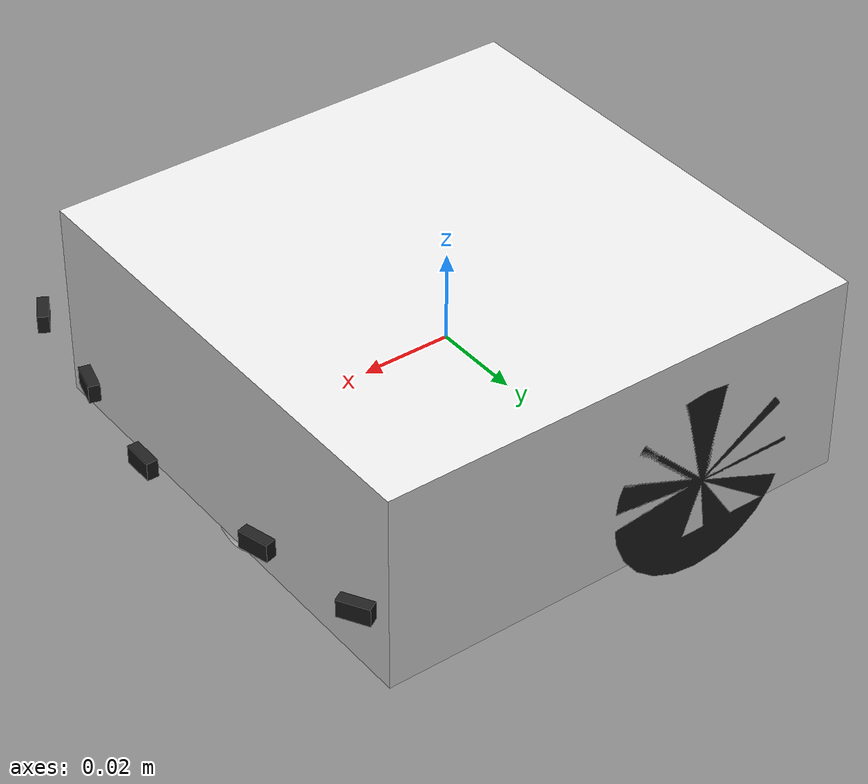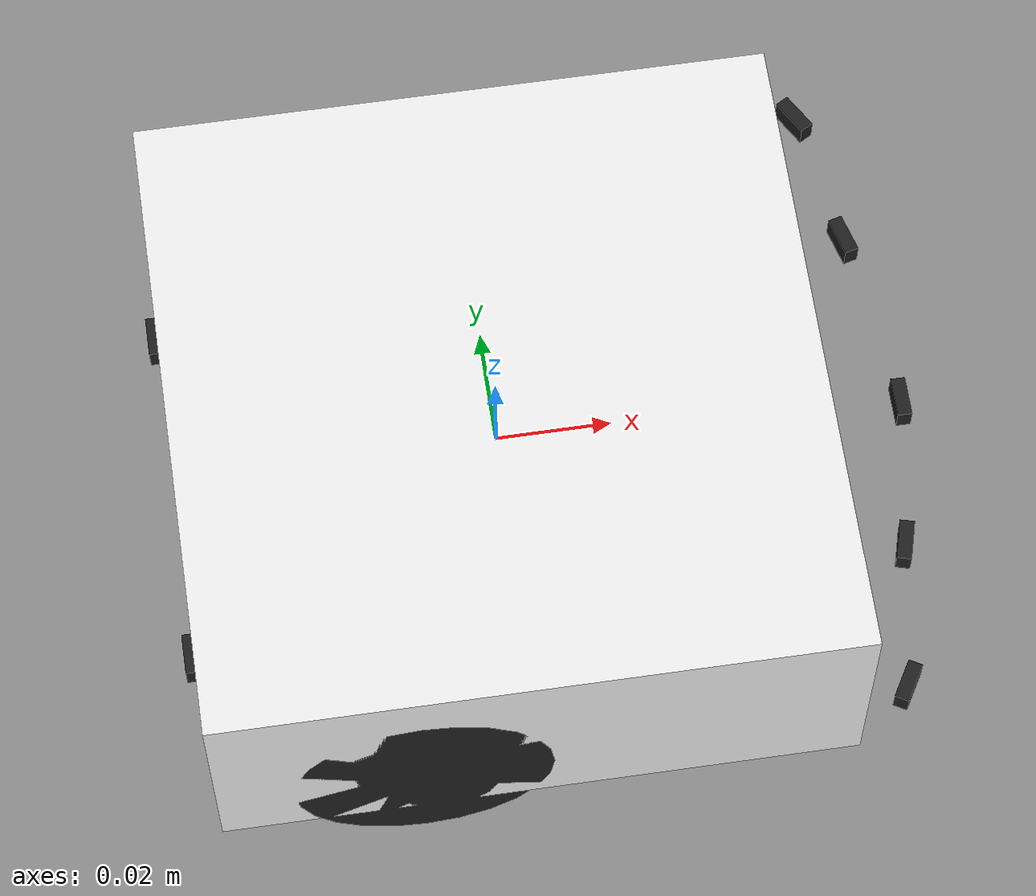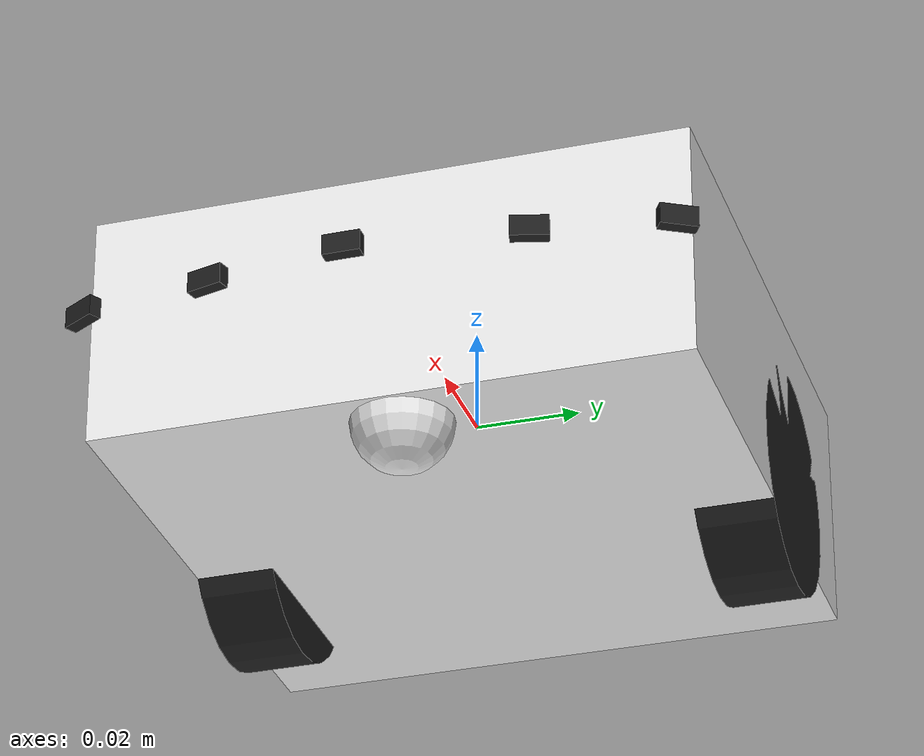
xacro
<?xml version="1.0"?>
<robot xmlns:xacro="https://www.ros.org/wiki/xacro" name="thymio">

    <xacro:include filename="$(find ros_basics_models)/urdf/utils/inertia.xacro" />
    <xacro:include filename="$(find ros_basics_models)/urdf/utils/materials.xacro" />
    <xacro:include filename="$(find ros_basics_models)/urdf/utils/custom_sensors.xacro" />
    <xacro:include filename="$(find ros_basics_exercise)/urdf/thymio_simple.gazebo" />

    <xacro:arg name="left_wheel_mu" default="100.0"/>
    <xacro:property name="left_wheel_mu_p" value="$(arg left_wheel_mu)"/>
    <xacro:arg name="right_wheel_mu" default="100.0"/>
    <xacro:property name="right_wheel_mu_p" value="$(arg right_wheel_mu)"/>
    <xacro:property name="wheel_radius" value="0.022"/>
    <xacro:property name="wheel_len" value="0.015"/>
    <xacro:arg name="mass" default="0.270"/>
    <xacro:property name="mass_p" value="$(arg mass)"/>
    <xacro:property name="body_mass" value="${mass_p * 0.78}"/>
    <xacro:property name="wheel_mass" value="${mass_p * 0.10}"/>
    <xacro:property name="caster_mass" value="${mass_p * 0.02}"/>

    <link name="base_link">
        <visual>
            <origin xyz="0 0 0" rpy="0 0 0"/>
            <geometry>
                <box size="0.11 0.112 0.045"/>
            </geometry>
            <material name="white"/>
        </visual>
        <collision>
            <origin xyz="0 0 0" rpy="0 0 0"/>
            <geometry>
                <box size="0.11 0.112 0.045"/>
            </geometry>
            <material name="white"/>
        </collision>
        <inertial>
			<mass value="${body_mass}"/>
			<xacro:box_inertia mass="${body_mass}" x="0.11" y="0.112" z="0.045" />
		</inertial>
    </link>

    <!-- Implement the caster wheel -->
    <link name="caster_wheel">
		<visual>
		    <origin xyz="0 0 0" rpy="0 0 0"/>
		    <geometry>
		        <sphere radius="0.0095"/>
		    </geometry>
		    <material name="white"/>
		</visual>
		<collision>
		    <origin xyz="0 0 0" rpy="0 0 0"/>
		    <geometry>
		        <sphere radius="0.0095"/>
		    </geometry>
		    <material name="white"/>
		</collision>
        <inertial>
			<mass value="${caster_mass}"/>
			<xacro:sphere_inertia mass="${caster_mass}" r="0.0095" />
		</inertial>
	</link>

    <!-- Implement the left wheel -->
    <link name="left_wheel">
        <visual>
            <origin xyz="0 0 0" rpy="${pi/2} 0 0"/>
            <geometry>
                <cylinder length="${wheel_len}" radius="${wheel_radius}"/>
            </geometry>
            <material name="black"/>
        </visual>
        <collision>
           <origin xyz="0 0 0" rpy="${pi/2} 0 0"/>
            <geometry>
                <cylinder length="${wheel_len}" radius="${wheel_radius}"/>
            </geometry>
            <material name="black"/>
        </collision>
        <inertial>
		    <mass value="${wheel_mass}"/>
		    <xacro:cylinder_inertia mass="${wheel_mass}" h="${wheel_len}" r="${wheel_radius}"/>
		</inertial>
    </link>

    <!-- Implement the right wheel -->
    <link name="right_wheel">
        <visual>
            <origin xyz="0 0 0" rpy="${pi/2} 0 0"/>
            <geometry>
                <cylinder length="${wheel_len}" radius="${wheel_radius}"/>
            </geometry>
            <material name="black"/>
        </visual>
        <collision>
           <origin xyz="0 0 0" rpy="${pi/2} 0 0"/>
            <geometry>
                <cylinder length="${wheel_len}" radius="${wheel_radius}"/>
            </geometry>
            <material name="black"/>
        </collision>
        <inertial>
		    <mass value="${wheel_mass}"/>
		    <xacro:cylinder_inertia mass="${wheel_mass}" h="${wheel_len}" r="${wheel_radius}"/>
		</inertial>
    </link>

    <!-- Implement the joint for the caster wheel -->
	<joint name="caster_wheel_joint" type="fixed">
		<parent link="base_link"/>
		<child link="caster_wheel"/>
		<origin xyz="0.045 0 -0.0225" rpy="0 0 0"/>
		<axis xyz="0 0 0"/>
	</joint>

    <!-- Implement the joint for the left wheel -->
	<joint name="left_wheel_joint" type="continuous">
		<parent link="base_link"/>
		<child link="left_wheel"/>
		<origin xyz="-0.02 0.0485 -0.0100" rpy="0 0 0"/>
		<axis xyz="0 1 0"/>
        <dynamics friction="${left_wheel_mu_p}"/>
	</joint>

    <!-- Implement the joint for the right wheel -->
	<joint name="right_wheel_joint" type="continuous">
		<parent link="base_link"/>
		<child link="right_wheel"/>
		<origin xyz="-0.02 -0.0485 -0.0100" rpy="0 0 0"/>
		<axis xyz="0 1 0"/>
        <dynamics friction="${right_wheel_mu_p}"/>
	</joint>

    <!-- Add your sensors using the macro -->
    <xacro:csensor plink="base_link" id="0" mass="0.001" originrpy="0 0 0" originxyz="-0.003 0 0" jointxyz="0.0600 0.0575 0" jointrpy="${pi} 0 ${pi/2 + pi/6}"/>
    <xacro:csensor plink="base_link" id="1" mass="0.001" originrpy="0 0 0" originxyz="-0.003 0 0" jointxyz="0.0650 0.0325 0" jointrpy="${pi} 0 ${pi/2 + pi/12}"/>
    <xacro:csensor plink="base_link" id="2" mass="0.001" originrpy="0 0 0" originxyz="-0.003 0 0" jointxyz="0.0700 0 0" jointrpy="${pi} 0 ${pi/2}"/>
    <xacro:csensor plink="base_link" id="3" mass="0.001" originrpy="0 0 0" originxyz="-0.003 0 0" jointxyz="0.0650 -0.0325 0" jointrpy="0 0 -${pi/2 + pi/12}"/>
    <xacro:csensor plink="base_link" id="4" mass="0.001" originrpy="0 0 0" originxyz="-0.003 0 0" jointxyz="0.0600 -0.0575 0" jointrpy="0 0 -${pi/2 + pi/6}"/>
    <xacro:csensor plink="base_link" id="5" mass="0.001" originrpy="0 0 0" originxyz="-0.003 0 0" jointxyz="-0.056 -0.03 0" jointrpy="0 0 ${pi/2}"/>
    <xacro:csensor plink="base_link" id="6" mass="0.001" originrpy="0 0 0" originxyz="-0.003 0 0" jointxyz="-0.056 0.03 0" jointrpy="0 0 ${pi/2}"/>
</robot>

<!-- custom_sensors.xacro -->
<robot xmlns:xacro="https://www.ros.org/wiki/xacro">

    <xacro:property name="id" value="foo"/>
    <xacro:property name="plink" value="foo_parent"/>

    <xacro:property name="jointxyz" value="0 0 0"/>
    <xacro:property name="jointrpy" value="0 0 0"/>
    <xacro:property name="sensor_width" value="0.007" />
    <xacro:property name="sensor_length" value="0.0025" />
    <xacro:property name="sensor_height" value="0.004" />
    <xacro:property name="originrpy" value="0 0 0" />
    <xacro:property name="originxyz" value="0 0 0" />

    <xacro:macro name="csensor" params="plink id mass originrpy originxyz jointxyz jointrpy">

        <link name="sensor_${id}_mount_point">
            <visual>
                <geometry>
                    <box size="${sensor_width} ${sensor_length} ${sensor_height}" />
                </geometry>
                <material name="black" />
                <origin rpy="${originrpy}" xyz="${originxyz}" />
            </visual>
            <collision>
                <geometry>
                    <box size="0 0 0" />
                </geometry>
                <origin rpy="${originrpy}" xyz="${originxyz}" />
            </collision>
            <inertial>
                <mass value="${mass}" />
                <origin rpy="${originrpy}" xyz="${originxyz}" />
                <xacro:box_inertia mass="${mass}" x="${sensor_length}" y="${sensor_width}" z="${sensor_height}" />
            </inertial>
        </link>

        <joint name="${plink}_sensor_${id}_mount_point" type="fixed">
            <parent link="${plink}" />
            <child link="sensor_${id}_mount_point" />
            <origin xyz="${jointxyz}" rpy="${jointrpy}" />
            <axis rpy="0 0 0" xyz="0 0 0"/>
        </joint>

        <link name="sensor_${id}">
            <visual>
                <geometry>
                    <box size="0 0 0" />
                </geometry>
                <material name="black" />
                <origin rpy="0 0 0" xyz="0 0 0" />
            </visual>
            <collision>
                <geometry>
                    <box size="0 0 0" />
                </geometry>
                <origin rpy="0 0 0" xyz="0 0 0" />
            </collision>
            <inertial>
                <mass value="0" />
                <origin rpy="0 0 0" xyz="0 0 0" />
                <xacro:box_inertia mass="0.001" x="${sensor_length}" y="${sensor_width}" z="${sensor_height}" />
            </inertial>
        </link>

        <joint name="${plink}_sensor_${id}" type="fixed">
            <parent link="sensor_${id}_mount_point" />
            <child link="sensor_${id}" />
            <origin xyz="-${sensor_width / 2} 0 0" rpy="0 0 1.57" />
            <axis rpy="0 0 0" xyz="0 0 0"/>
        </joint>

        <gazebo reference="sensor_${id}">
            <sensor type="ray" name="sensor_${id}_instance">
                <pose>0 0 0 0 0 0</pose>
                <ray>
                    <scan>
                        <horizontal>
                            <samples>1</samples>
                            <resolution>1</resolution>
                            <min_angle>-0.05</min_angle>
                            <max_angle>0.05</max_angle>
                        </horizontal>
                        <vertical>
                            <samples>1</samples>
                            <resolution>1</resolution>
                            <min_angle>-0.05</min_angle>
                            <max_angle>0.05</max_angle>
                        </vertical>
                    </scan>
                    <range>
                        <min>0.0005</min>
                        <max>0.04</max>
                        <resolution>0.0001</resolution>
                    </range>
                </ray>
                <plugin name="laser" filename="libgazebo_ros_laser.so">
                    <topicName>/thymio_laser_${id}/scan</topicName>
                    <frameName>sensor_${id}</frameName>
                </plugin>
                <always_on>true</always_on>
                <update_rate>10</update_rate>
                <visualize>true</visualize>
            </sensor>
        </gazebo>
    </xacro:macro>

</robot>
